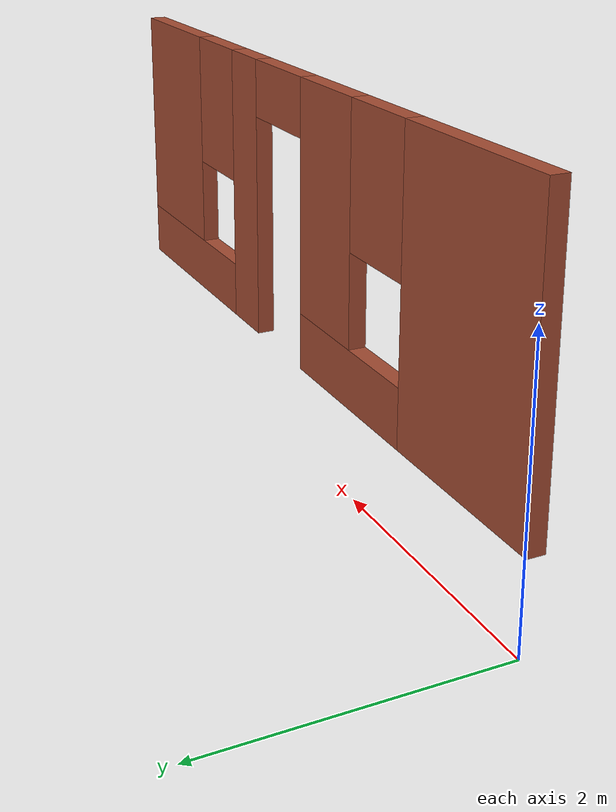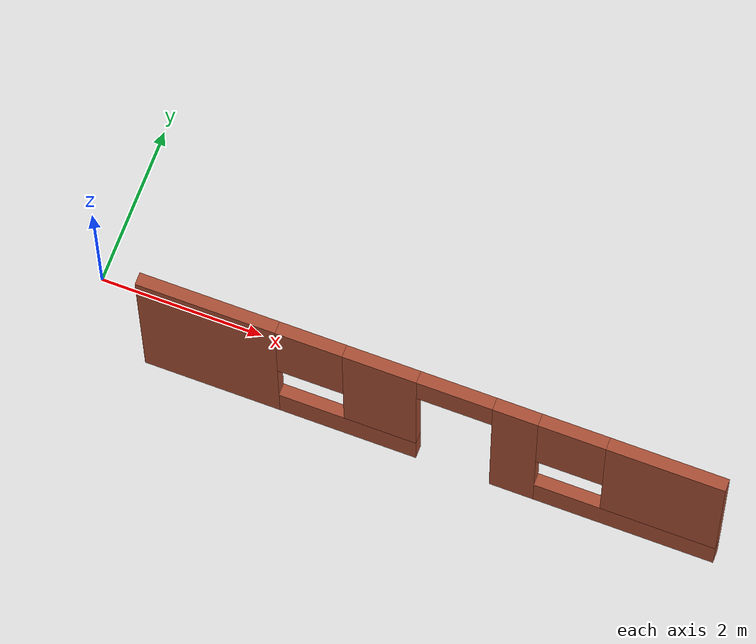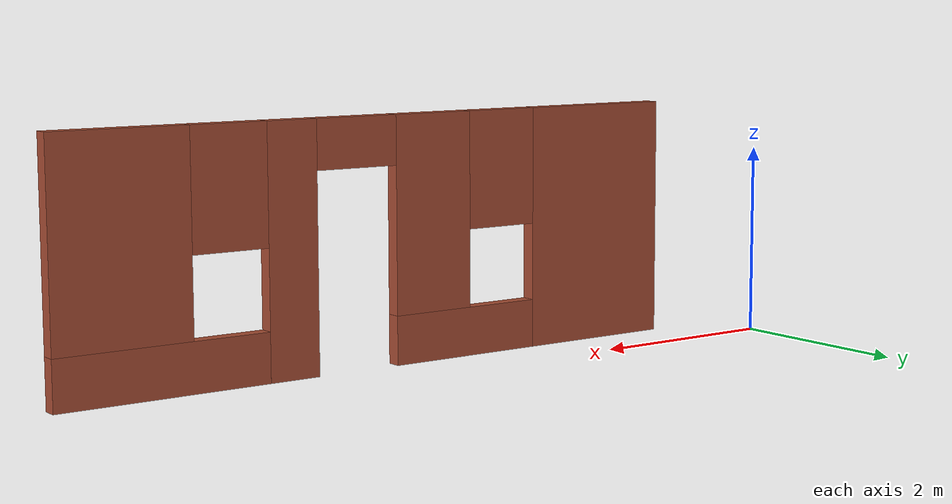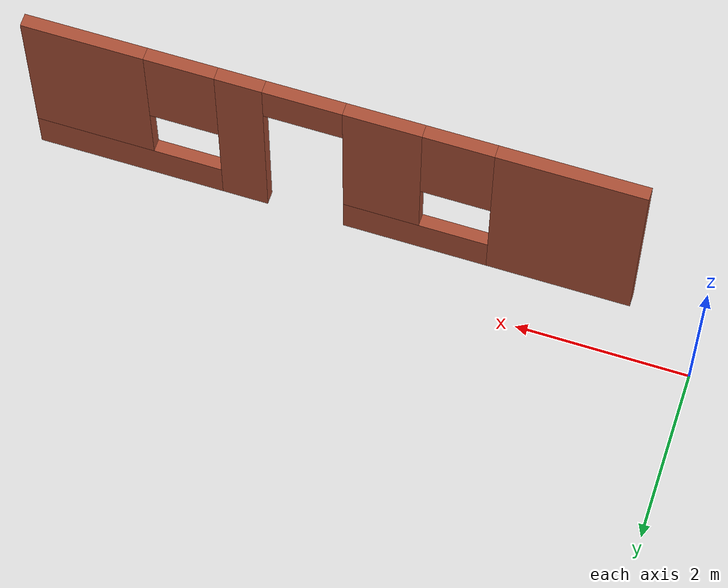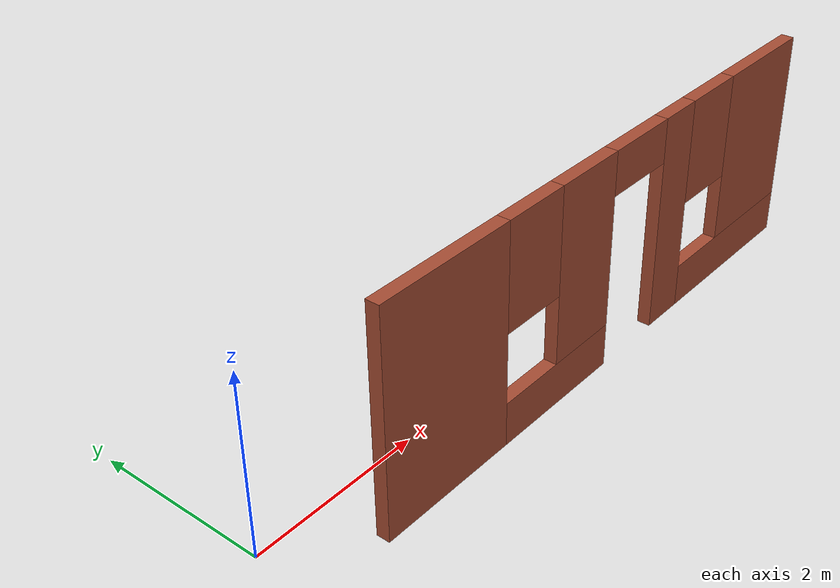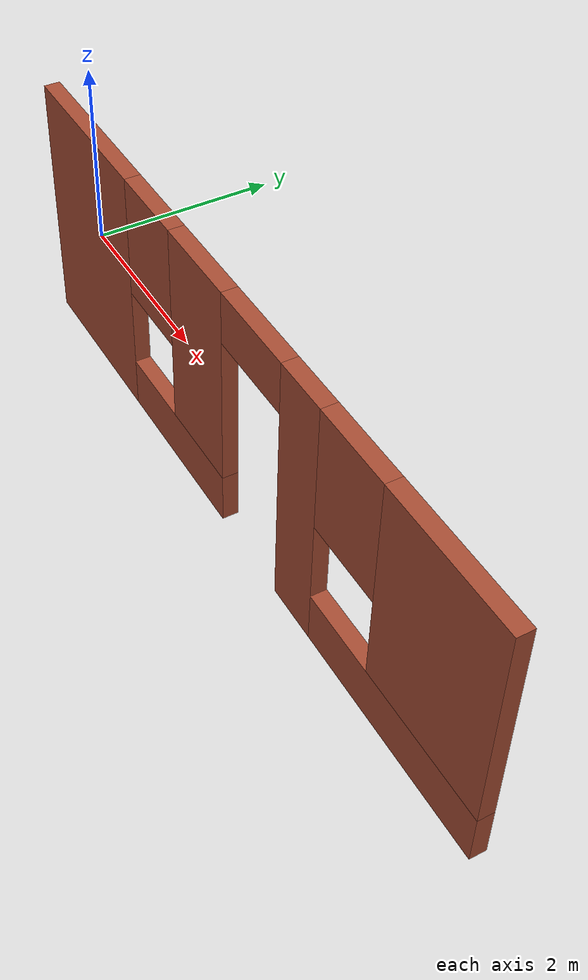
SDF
<?xml version='1.0'?>
<sdf version='1.6'>
  <model name='model'>
    <pose frame=''>4.35289 -0.707437 0 0 -0 0</pose>
    <link name='Wall_0'>
      <pose frame=''>0 0 0 0 -0 0</pose>
      <visual name='Wall_0_Visual_0'>
        <pose frame=''>-2.66089 0 1.25 0 -0 0</pose>
        <geometry>
          <box>
            <size>1.67823 0.15 2.5</size>
          </box>
        </geometry>
        <material>
          <script>
            <uri>file://media/materials/scripts/gazebo.material</uri>
            <name>Gazebo/Bricks</name>
          </script>
          <ambient>1 1 1 1</ambient>
        </material>
        <meta>
          <layer>0</layer>
        </meta>
      </visual>
      <collision name='Wall_0_Collision_0'>
        <geometry>
          <box>
            <size>1.67823 0.15 2.5</size>
          </box>
        </geometry>
        <pose frame=''>-2.66089 0 1.25 0 -0 0</pose>
      </collision>
      <visual name='Wall_0_Visual_1'>
        <pose frame=''>1.03194 0 1.25 0 -0 0</pose>
        <geometry>
          <box>
            <size>0.537836 0.15 2.5</size>
          </box>
        </geometry>
        <material>
          <script>
            <uri>file://media/materials/scripts/gazebo.material</uri>
            <name>Gazebo/Bricks</name>
          </script>
          <ambient>1 1 1 1</ambient>
        </material>
        <meta>
          <layer>0</layer>
        </meta>
      </visual>
      <collision name='Wall_0_Collision_1'>
        <geometry>
          <box>
            <size>0.537836 0.15 2.5</size>
          </box>
        </geometry>
        <pose frame=''>1.03194 0 1.25 0 -0 0</pose>
      </collision>
      <visual name='Wall_0_Visual_2'>
        <pose frame=''>-0.979373 0 0.25 0 -0 0</pose>
        <geometry>
          <box>
            <size>1.6848 0.15 0.5</size>
          </box>
        </geometry>
        <material>
          <script>
            <uri>file://media/materials/scripts/gazebo.material</uri>
            <name>Gazebo/Bricks</name>
          </script>
          <ambient>1 1 1 1</ambient>
        </material>
        <meta>
          <layer>0</layer>
        </meta>
      </visual>
      <collision name='Wall_0_Collision_2'>
        <geometry>
          <box>
            <size>1.6848 0.15 0.5</size>
          </box>
        </geometry>
        <pose frame=''>-0.979373 0 0.25 0 -0 0</pose>
      </collision>
      <visual name='Wall_0_Visual_3'>
        <pose frame=''>2.40043 0 0.25 0 -0 0</pose>
        <geometry>
          <box>
            <size>2.19914 0.15 0.5</size>
          </box>
        </geometry>
        <material>
          <script>
            <uri>file://media/materials/scripts/gazebo.material</uri>
            <name>Gazebo/Bricks</name>
          </script>
          <ambient>1 1 1 1</ambient>
        </material>
        <meta>
          <layer>0</layer>
        </meta>
      </visual>
      <collision name='Wall_0_Collision_3'>
        <geometry>
          <box>
            <size>2.19914 0.15 0.5</size>
          </box>
        </geometry>
        <pose frame=''>2.40043 0 0.25 0 -0 0</pose>
      </collision>
      <visual name='Wall_0_Visual_4'>
        <pose frame=''>-0.579373 0 1.5 0 -0 0</pose>
        <geometry>
          <box>
            <size>0.884796 0.15 2</size>
          </box>
        </geometry>
        <material>
          <script>
            <uri>file://media/materials/scripts/gazebo.material</uri>
            <name>Gazebo/Bricks</name>
          </script>
          <ambient>1 1 1 1</ambient>
        </material>
        <meta>
          <layer>0</layer>
        </meta>
      </visual>
      <collision name='Wall_0_Collision_4'>
        <geometry>
          <box>
            <size>0.884796 0.15 2</size>
          </box>
        </geometry>
        <pose frame=''>-0.579373 0 1.5 0 -0 0</pose>
      </collision>
      <visual name='Wall_0_Visual_5'>
        <pose frame=''>-0.579373 0 1.5 0 -0 0</pose>
        <geometry>
          <box>
            <size>0.884796 0.15 2</size>
          </box>
        </geometry>
        <material>
          <script>
            <uri>file://media/materials/scripts/gazebo.material</uri>
            <name>Gazebo/Bricks</name>
          </script>
          <ambient>1 1 1 1</ambient>
        </material>
        <meta>
          <layer>0</layer>
        </meta>
      </visual>
      <collision name='Wall_0_Collision_5'>
        <geometry>
          <box>
            <size>0.884796 0.15 2</size>
          </box>
        </geometry>
        <pose frame=''>-0.579373 0 1.5 0 -0 0</pose>
      </collision>
      <visual name='Wall_0_Visual_6'>
        <pose frame=''>2.80043 0 1.5 0 -0 0</pose>
        <geometry>
          <box>
            <size>1.39914 0.15 2</size>
          </box>
        </geometry>
        <material>
          <script>
            <uri>file://media/materials/scripts/gazebo.material</uri>
            <name>Gazebo/Bricks</name>
          </script>
          <ambient>1 1 1 1</ambient>
        </material>
        <meta>
          <layer>0</layer>
        </meta>
      </visual>
      <collision name='Wall_0_Collision_6'>
        <geometry>
          <box>
            <size>1.39914 0.15 2</size>
          </box>
        </geometry>
        <pose frame=''>2.80043 0 1.5 0 -0 0</pose>
      </collision>
      <visual name='Wall_0_Visual_7'>
        <pose frame=''>-1.42177 0 1.9 0 -0 0</pose>
        <geometry>
          <box>
            <size>0.8 0.15 1.2</size>
          </box>
        </geometry>
        <material>
          <script>
            <uri>file://media/materials/scripts/gazebo.material</uri>
            <name>Gazebo/Bricks</name>
          </script>
          <ambient>1 1 1 1</ambient>
        </material>
        <meta>
          <layer>0</layer>
        </meta>
      </visual>
      <collision name='Wall_0_Collision_7'>
        <geometry>
          <box>
            <size>0.8 0.15 1.2</size>
          </box>
        </geometry>
        <pose frame=''>-1.42177 0 1.9 0 -0 0</pose>
      </collision>
      <visual name='Wall_0_Visual_8'>
        <pose frame=''>1.70086 0 1.9 0 -0 0</pose>
        <geometry>
          <box>
            <size>0.8 0.15 1.2</size>
          </box>
        </geometry>
        <material>
          <script>
            <uri>file://media/materials/scripts/gazebo.material</uri>
            <name>Gazebo/Bricks</name>
          </script>
          <ambient>1 1 1 1</ambient>
        </material>
        <meta>
          <layer>0</layer>
        </meta>
      </visual>
      <collision name='Wall_0_Collision_8'>
        <geometry>
          <box>
            <size>0.8 0.15 1.2</size>
          </box>
        </geometry>
        <pose frame=''>1.70086 0 1.9 0 -0 0</pose>
      </collision>
      <visual name='Wall_0_Visual_9'>
        <pose frame=''>0.313025 0 2.25 0 -0 0</pose>
        <geometry>
          <box>
            <size>0.9 0.15 0.5</size>
          </box>
        </geometry>
        <material>
          <script>
            <uri>file://media/materials/scripts/gazebo.material</uri>
            <name>Gazebo/Bricks</name>
          </script>
          <ambient>1 1 1 1</ambient>
        </material>
        <meta>
          <layer>0</layer>
        </meta>
      </visual>
      <collision name='Wall_0_Collision_9'>
        <geometry>
          <box>
            <size>0.9 0.15 0.5</size>
          </box>
        </geometry>
        <pose frame=''>0.313025 0 2.25 0 -0 0</pose>
      </collision>
      <visual name='Wall_0_Visual_10'>
        <pose frame=''>0.313025 0 2.25 0 -0 0</pose>
        <geometry>
          <box>
            <size>0.9 0.15 0.5</size>
          </box>
        </geometry>
        <material>
          <script>
            <uri>file://media/materials/scripts/gazebo.material</uri>
            <name>Gazebo/Bricks</name>
          </script>
          <ambient>1 1 1 1</ambient>
        </material>
        <meta>
          <layer>0</layer>
        </meta>
      </visual>
      <collision name='Wall_0_Collision_10'>
        <geometry>
          <box>
            <size>0.9 0.15 0.5</size>
          </box>
        </geometry>
        <pose frame=''>0.313025 0 2.25 0 -0 0</pose>
      </collision>
    </link>
    <static>1</static>
  </model>
</sdf>
